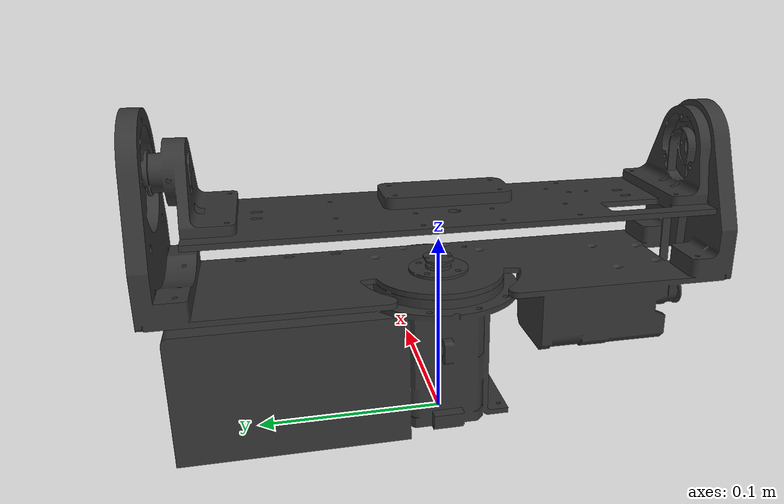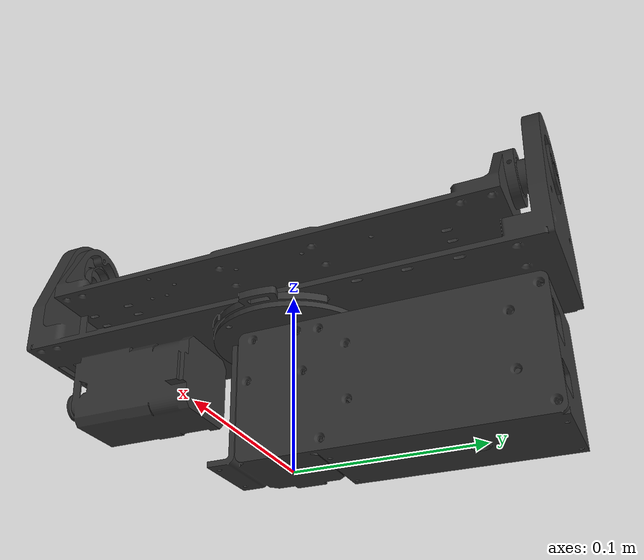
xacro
<?xml version="1.0"?>
<robot name="iqr_robot" xmlns:xacro="http://www.ros.org/wiki/xacro">

  <!-- Include accessories -->
  <xacro:include filename="$(find pan_tilt_description)/urdf/pan_tilt.urdf.xacro" />

  <link name="base_link" />
  <xacro:pan_tilt parent="base_link" >
    <origin xyz="0 0 0" rpy="0 0 0" />
  </xacro:pan_tilt>
</robot>

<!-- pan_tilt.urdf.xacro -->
<robot xmlns:xacro="http://www.ros.org/wiki/xacro" name="pan_tilt" description="iqr pan tilt">
  <xacro:property name="PI" value="3.1415926535897931" />
  <xacro:macro name="pan_tilt" params="parent *origin">
  <xacro:property name="prefix" value="pan_tilt" />
    <joint name="${prefix}_base_joint" type="fixed">
      <xacro:insert_block name="origin" />
      <parent link="${parent}"/>
      <child link="${prefix}_base_link"/>
    </joint>

    <link name="${prefix}_base_link">
      <visual>
        <origin xyz="0 0 0" rpy="0 0 0" />
        <geometry>
          <mesh filename="package://pan_tilt_description/urdf/mesh/base.stl" />
        </geometry>
        <material name="">
          <color rgba="0.2 0.2 0.2 1" />
        </material>
      </visual>
    </link>

    <link name="${prefix}_yaw_link">
      <visual>
        <origin xyz="0 0 0" rpy="0 0 0" />
        <geometry>
          <mesh filename="package://pan_tilt_description/urdf/mesh/pan.stl" />
        </geometry>
        <material name="">
          <color rgba="0.2 0.2 0.2 1" />
        </material>
      </visual>
    </link>
    <joint name="${prefix}_yaw_joint" type="continuous">
      <origin xyz="0.0 0.0 0.083" rpy="0.0 0.0 0.0"/>
      <parent link="${prefix}_base_link"/>
      <child link="${prefix}_yaw_link"/>
      <axis xyz="0 0 1"/>
      <limit lower="-1.04" upper="1.04" effort="0.0" velocity="0.0"/>
    </joint>

    <link name="${prefix}_pitch_link">
      <visual>
        <origin xyz="0 0 0" rpy="0 0 0" />
        <geometry>
          <mesh filename="package://pan_tilt_description/urdf/mesh/tilt.stl" />
        </geometry>
        <material name="">
          <color rgba="0.2 0.2 0.2 1" />
        </material>
      </visual>
    </link>
    <joint name="${prefix}_pitch_joint" type="continuous">
      <origin xyz="0.0 0.0 0.060" rpy="0.0 0.0 0.0"/>
      <parent link="${prefix}_yaw_link"/>
      <child link="${prefix}_pitch_link"/>
      <axis xyz="0 1 0"/>
      <limit lower="-1.04" upper="1.04" effort="0.0" velocity="0.0"/>
    </joint>

    <link name="${prefix}_kinect_surface"/>
    <joint name="${prefix}_kinect_surface_joint" type="fixed">
      <origin xyz="-0.0063 -0.010 -0.025" rpy="0 0 0" />
      <parent link="${prefix}_pitch_link"/>
      <child link="${prefix}_kinect_surface"/>
    </joint>

  </xacro:macro>

</robot>
